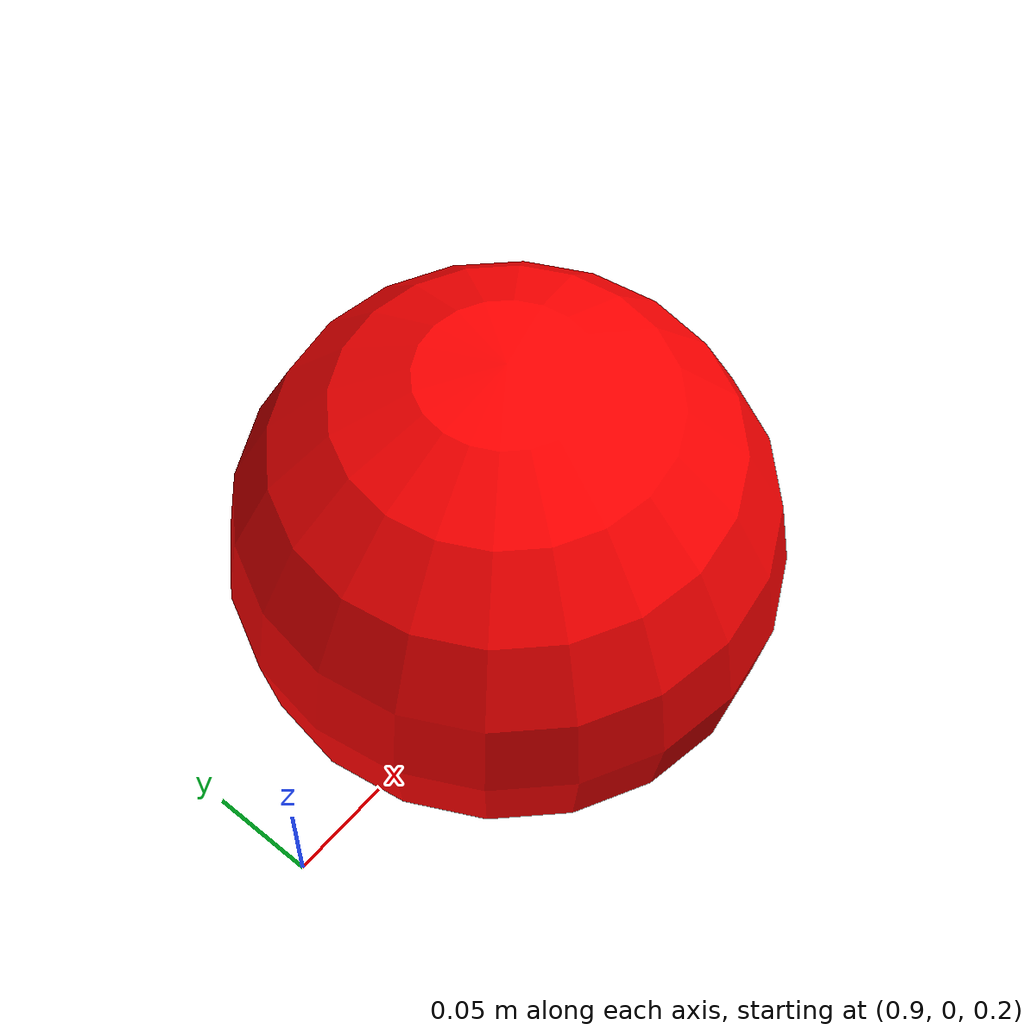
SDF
<?xml version="1.0"?>
<!-- 受控正例：球体贴近 FOV 右边界，仅保留约 40% 可见投影，验证待复查候选。 -->
<sdf version="1.9"><model name="hw_suite_partial_occlusion"><static>true</static><link name="red_sphere_link"><pose>1.04 0 0.30 0 0 0</pose><visual name="visual"><geometry><sphere><radius>0.12</radius></sphere></geometry><material><ambient>1 0 0 1</ambient><diffuse>1 0 0 1</diffuse></material></visual></link></model></sdf>
